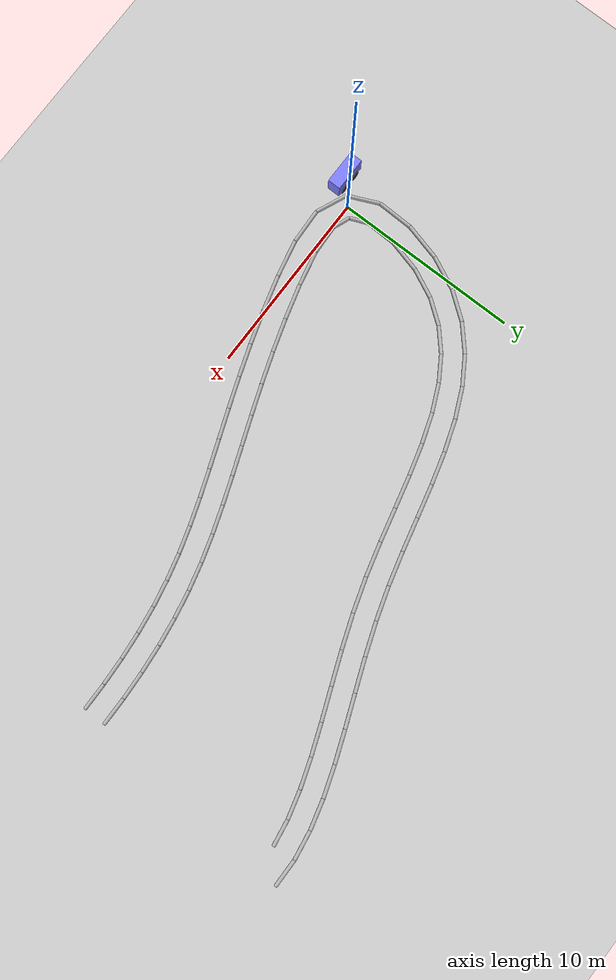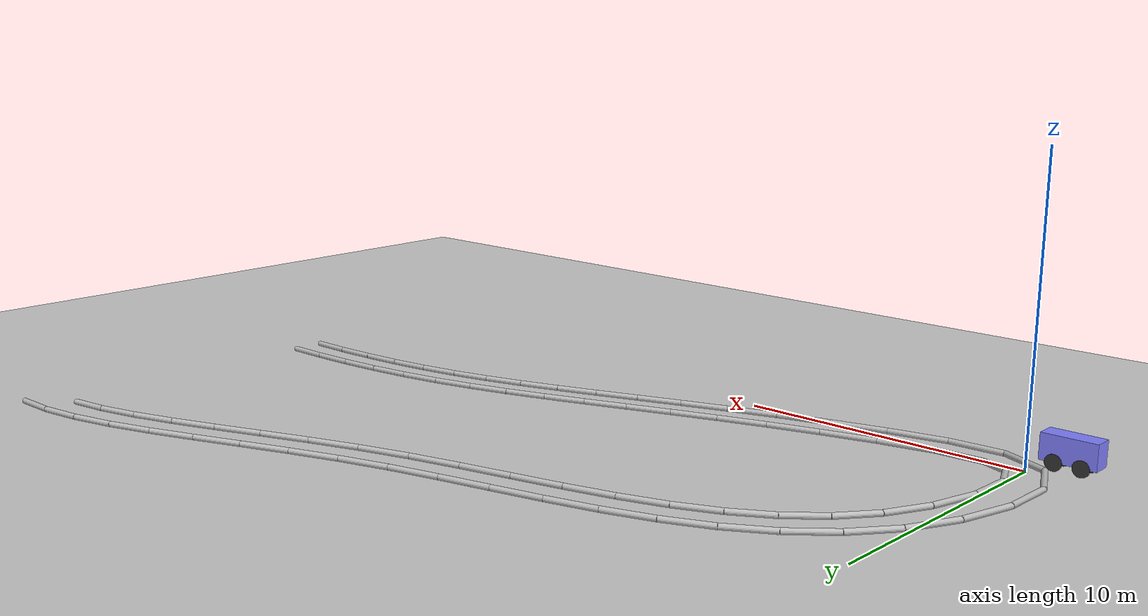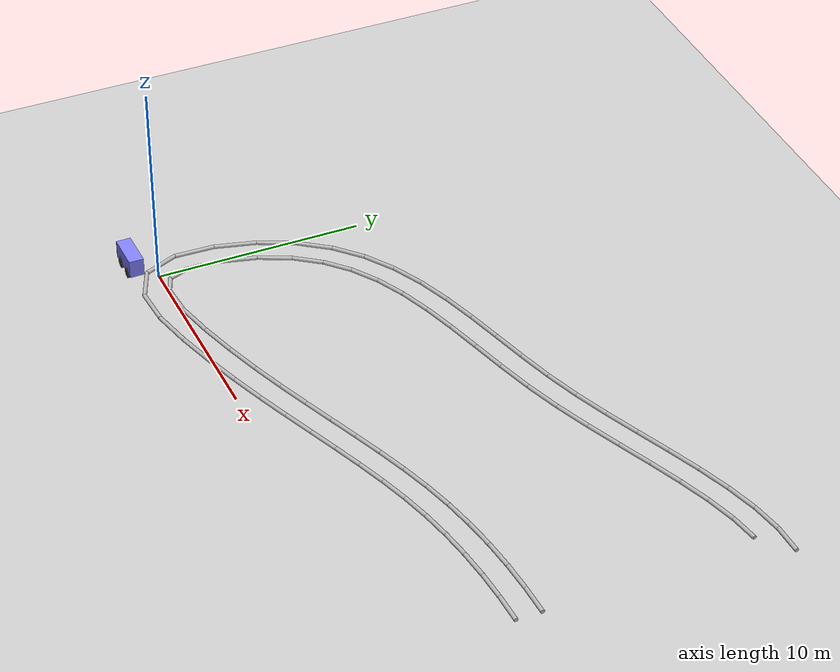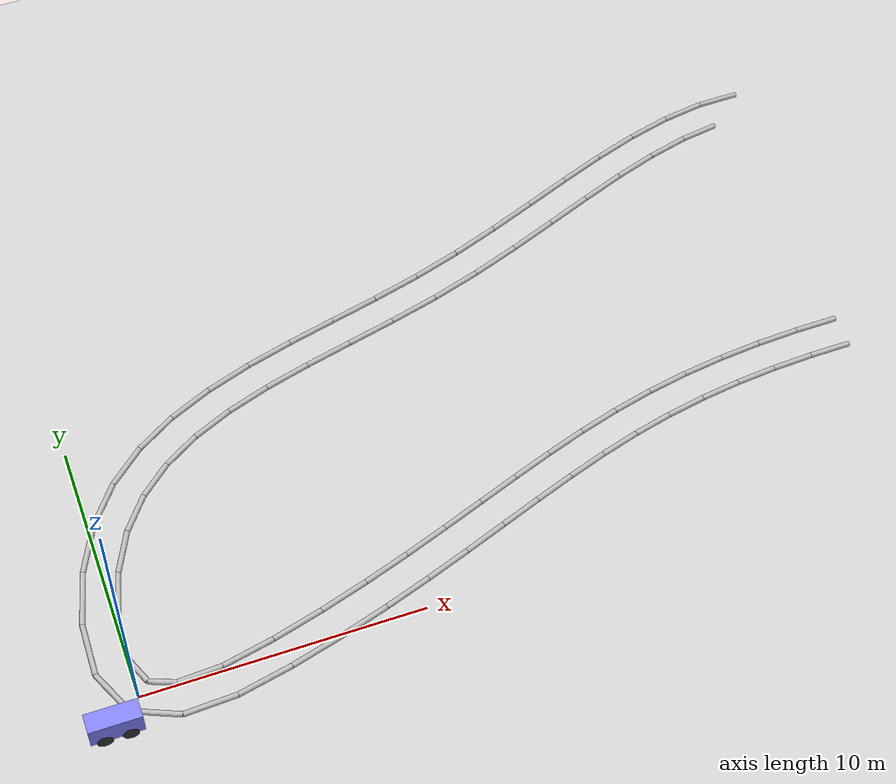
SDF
<sdf version="1.6">
 <world name="default">
  <include>
   <uri>file:///home/dliujm/um_files/rob_498_av/AutoVehicle25/audi_ws/src/vehicle_desc/models/lucy</uri>
   <pose>-1 -1 0.7205 0 0 0</pose>
  </include>
  <model name="ground_plane">
   <static>true</static>
   <link name="link">
    <collision name="collision">
     <geometry><plane><normal>0 0 1</normal><size>5000 5000</size></plane></geometry>
     <surface>
      <friction>
       <ode><mu>50</mu></ode>
       <bullet><friction>1</friction><rolling_friction>0.1</rolling_friction></bullet>
      </friction>
     </surface>
    </collision>
    <visual name="visual">
     <geometry><plane><normal>0 0 1</normal><size>5000 5000</size></plane></geometry>
     <material>
      <ambient>0.8 0.8 0.8 1</ambient>
      <diffuse>0.8 0.8 0.8 1</diffuse>
      <specular>0.8 0.8 0.8 1</specular>
     </material>
    </visual>
    <inertial>
     <mass>1</mass>
     <inertia><ixx>1</ixx><ixy>0</ixy><ixz>0</ixz><iyy>1</iyy><iyz>0</iyz><izz>1</izz></inertia>
    </inertial>
   </link>
  </model>
  <model name="line_model">
   <static>true</static>
   <link name="cylinder_(-0.42490210521195326, -0.4236250712439601)_(1.1908441192839923, -1.1194447244828043)">
    <pose>0.3829710070360195 -0.7715348978633823 0.05 0 1.5707963267948966 -0.40664573701741885</pose>
    <visual name="visual">
     <geometry><cylinder><radius>0.1</radius><length>1.759204607715182</length></cylinder></geometry>
    </visual>
    <collision name="collision">
     <geometry><cylinder><radius>0.1</radius><length>1.759204607715182</length></cylinder></geometry>
    </collision>
   </link>
   <link name="cylinder_(1.1908441192839923, -1.1194447244828043)_(3.091994487557768, -1.030270376383361)">
    <pose>2.1414193034208804 -1.0748575504330826 0.05 0 1.5707963267948966 0.04687111425009558</pose>
    <visual name="visual">
     <geometry><cylinder><radius>0.1</radius><length>1.9032406014864423</length></cylinder></geometry>
    </visual>
    <collision name="collision">
     <geometry><cylinder><radius>0.1</radius><length>1.9032406014864423</length></cylinder></geometry>
    </collision>
   </link>
   <link name="cylinder_(3.091994487557768, -1.030270376383361)_(5.074517604105659, -0.6003794913893742)">
    <pose>4.083256045831714 -0.8153249338863675 0.05 0 1.5707963267948966 0.21353447312620455</pose>
    <visual name="visual">
     <geometry><cylinder><radius>0.1</radius><length>2.0285965790781755</length></cylinder></geometry>
    </visual>
    <collision name="collision">
     <geometry><cylinder><radius>0.1</radius><length>2.0285965790781755</length></cylinder></geometry>
    </collision>
   </link>
   <link name="cylinder_(5.074517604105659, -0.6003794913893742)_(6.9579002851628955, -0.08009286775584715)">
    <pose>6.016208944634277 -0.34023617957261065 0.05 0 1.5707963267948966 0.26952901872523805</pose>
    <visual name="visual">
     <geometry><cylinder><radius>0.1</radius><length>1.9539264300475387</length></cylinder></geometry>
    </visual>
    <collision name="collision">
     <geometry><cylinder><radius>0.1</radius><length>1.9539264300475387</length></cylinder></geometry>
    </collision>
   </link>
   <link name="cylinder_(6.9579002851628955, -0.08009286775584715)_(8.729994601687931, 0.47400390705059803)">
    <pose>7.843947443425414 0.19695551964737545 0.05 0 1.5707963267948966 0.3030479841500894</pose>
    <visual name="visual">
     <geometry><cylinder><radius>0.1</radius><length>1.8567017807152655</length></cylinder></geometry>
    </visual>
    <collision name="collision">
     <geometry><cylinder><radius>0.1</radius><length>1.8567017807152655</length></cylinder></geometry>
    </collision>
   </link>
   <link name="cylinder_(8.729994601687931, 0.47400390705059803)_(10.405185362650311, 1.0484684190541398)">
    <pose>9.567589982169121 0.761236163052369 0.05 0 1.5707963267948966 0.3303579236713938</pose>
    <visual name="visual">
     <geometry><cylinder><radius>0.1</radius><length>1.770952726970764</length></cylinder></geometry>
    </visual>
    <collision name="collision">
     <geometry><cylinder><radius>0.1</radius><length>1.770952726970764</length></cylinder></geometry>
    </collision>
   </link>
   <link name="cylinder_(10.405185362650311, 1.0484684190541398)_(11.997865557862005, 1.629858035329601)">
    <pose>11.201525460256157 1.3391632271918703 0.05 0 1.5707963267948966 0.35000884361238016</pose>
    <visual name="visual">
     <geometry><cylinder><radius>0.1</radius><length>1.6954775404388247</length></cylinder></geometry>
    </visual>
    <collision name="collision">
     <geometry><cylinder><radius>0.1</radius><length>1.6954775404388247</length></cylinder></geometry>
    </collision>
   </link>
   <link name="cylinder_(11.997865557862005, 1.629858035329601)_(13.522477881215085, 2.2048133128910097)">
    <pose>12.760171719538544 1.9173356741103054 0.05 0 1.5707963267948966 0.3606242586592719</pose>
    <visual name="visual">
     <geometry><cylinder><radius>0.1</radius><length>1.6294220778287605</length></cylinder></geometry>
    </visual>
    <collision name="collision">
     <geometry><cylinder><radius>0.1</radius><length>1.6294220778287605</length></cylinder></geometry>
    </collision>
   </link>
   <link name="cylinder_(13.522477881215085, 2.2048133128910097)_(14.993519838179548, 2.7601410753054667)">
    <pose>14.257998859697317 2.482477194098238 0.05 0 1.5707963267948966 0.36096625466536547</pose>
    <visual name="visual">
     <geometry><cylinder><radius>0.1</radius><length>1.5723718907618782</length></cylinder></geometry>
    </visual>
    <collision name="collision">
     <geometry><cylinder><radius>0.1</radius><length>1.5723718907618782</length></cylinder></geometry>
    </collision>
   </link>
   <link name="cylinder_(14.993519838179548, 2.7601410753054667)_(16.425564987053395, 3.2828989287556483)">
    <pose>15.709542412616472 3.0215200020305577 0.05 0 1.5707963267948966 0.350012674009541</pose>
    <visual name="visual">
     <geometry><cylinder><radius>0.1</radius><length>1.5244766583181784</length></cylinder></geometry>
    </visual>
    <collision name="collision">
     <geometry><cylinder><radius>0.1</radius><length>1.5244766583181784</length></cylinder></geometry>
    </collision>
   </link>
   <link name="cylinder_(16.425564987053395, 3.2828989287556483)_(17.8333194081268, 3.760470914795119)">
    <pose>17.129442197590098 3.5216849217753836 0.05 0 1.5707963267948966 0.32706052616070114</pose>
    <visual name="visual">
     <geometry><cylinder><radius>0.1</radius><length>1.4865555865494586</length></cylinder></geometry>
    </visual>
    <collision name="collision">
     <geometry><cylinder><radius>0.1</radius><length>1.4865555865494586</length></cylinder></geometry>
    </collision>
   </link>
   <link name="cylinder_(17.8333194081268, 3.760470914795119)_(19.231726768766382, 4.1806136170179204)">
    <pose>18.53252308844659 3.97054226590652 0.05 0 1.5707963267948966 0.2918638225384362</pose>
    <visual name="visual">
     <geometry><cylinder><radius>0.1</radius><length>1.4601585655407556</length></cylinder></geometry>
    </visual>
    <collision name="collision">
     <geometry><cylinder><radius>0.1</radius><length>1.4601585655407556</length></cylinder></geometry>
    </collision>
   </link>
   <link name="cylinder_(19.231726768766382, 4.1806136170179204)_(20.636491258416903, 4.531671735044268)">
    <pose>19.934109013591645 4.356142676031094 0.05 0 1.5707963267948966 0.2448895496930728</pose>
    <visual name="visual">
     <geometry><cylinder><radius>0.1</radius><length>1.4479658399338329</length></cylinder></geometry>
    </visual>
    <collision name="collision">
     <geometry><cylinder><radius>0.1</radius><length>1.4479658399338329</length></cylinder></geometry>
    </collision>
   </link>
   <link name="cylinder_(20.636491258416903, 4.531671735044268)_(22.0627879557665, 4.809466026150759)">
    <pose>21.349639607091703 4.670568880597514 0.05 0 1.5707963267948966 0.19235796682162745</pose>
    <visual name="visual">
     <geometry><cylinder><radius>0.1</radius><length>1.4530973597944916</length></cylinder></geometry>
    </visual>
    <collision name="collision">
     <geometry><cylinder><radius>0.1</radius><length>1.4530973597944916</length></cylinder></geometry>
    </collision>
   </link>
   <link name="cylinder_(22.0627879557665, 4.809466026150759)_(23.512406203221687, 5.01764055869068)">
    <pose>22.78759707949409 4.913553292420719 0.05 0 1.5707963267948966 0.1426312999129373</pose>
    <visual name="visual">
     <geometry><cylinder><radius>0.1</radius><length>1.4644895695611029</length></cylinder></geometry>
    </visual>
    <collision name="collision">
     <geometry><cylinder><radius>0.1</radius><length>1.4644895695611029</length></cylinder></geometry>
    </collision>
   </link>
   <link name="cylinder_(23.512406203221687, 5.01764055869068)_(24.984612074882982, 5.160124359403968)">
    <pose>24.248509139052334 5.088882459047324 0.05 0 1.5707963267948966 0.09648202874275892</pose>
    <visual name="visual">
     <geometry><cylinder><radius>0.1</radius><length>1.479084771748968</length></cylinder></geometry>
    </visual>
    <collision name="collision">
     <geometry><cylinder><radius>0.1</radius><length>1.479084771748968</length></cylinder></geometry>
    </collision>
   </link>
   <link name="cylinder_(24.984612074882982, 5.160124359403968)_(26.478593727209763, 5.240849577262615)">
    <pose>25.731602901046372 5.2004869683332915 0.05 0 1.5707963267948966 0.053981113129797524</pose>
    <visual name="visual">
     <geometry><cylinder><radius>0.1</radius><length>1.4961610001224415</length></cylinder></geometry>
    </visual>
    <collision name="collision">
     <geometry><cylinder><radius>0.1</radius><length>1.4961610001224415</length></cylinder></geometry>
    </collision>
   </link>
   <link name="cylinder_(26.478593727209763, 5.240849577262615)_(27.9934754372947, 5.2637653848314105)">
    <pose>27.23603458225223 5.252307481047013 0.05 0 1.5707963267948966 0.015125973014970729</pose>
    <visual name="visual">
     <geometry><cylinder><radius>0.1</radius><length>1.5150550253328718</length></cylinder></geometry>
    </visual>
    <collision name="collision">
     <geometry><cylinder><radius>0.1</radius><length>1.5150550253328718</length></cylinder></geometry>
    </collision>
   </link>
   <link name="cylinder_(28.926657469427106, 17.758682647520832)_(27.399387412983863, 17.73144496794074)">
    <pose>28.163022441205484 17.745063807730787 0.05 0 1.5707963267948966 -3.123760317860567</pose>
    <visual name="visual">
     <geometry><cylinder><radius>0.1</radius><length>1.5275129186023446</length></cylinder></geometry>
    </visual>
    <collision name="collision">
     <geometry><cylinder><radius>0.1</radius><length>1.5275129186023446</length></cylinder></geometry>
    </collision>
   </link>
   <link name="cylinder_(27.399387412983863, 17.73144496794074)_(25.843923676405467, 17.484533581234448)">
    <pose>26.621655544694665 17.607989274587595 0.05 0 1.5707963267948966 -2.9841680168689373</pose>
    <visual name="visual">
     <geometry><cylinder><radius>0.1</radius><length>1.5749389412595174</length></cylinder></geometry>
    </visual>
    <collision name="collision">
     <geometry><cylinder><radius>0.1</radius><length>1.5749389412595174</length></cylinder></geometry>
    </collision>
   </link>
   <link name="cylinder_(25.843923676405467, 17.484533581234448)_(24.260597231850582, 17.066920289893694)">
    <pose>25.052260454128024 17.275726935564073 0.05 0 1.5707963267948966 -2.8837088018435764</pose>
    <visual name="visual">
     <geometry><cylinder><radius>0.1</radius><length>1.6374747299214332</length></cylinder></geometry>
    </visual>
    <collision name="collision">
     <geometry><cylinder><radius>0.1</radius><length>1.6374747299214332</length></cylinder></geometry>
    </collision>
   </link>
   <link name="cylinder_(24.260597231850582, 17.066920289893694)_(22.648145672866093, 16.523665710398625)">
    <pose>23.454371452358338 16.79529300014616 0.05 0 1.5707963267948966 -2.8166245974317032</pose>
    <visual name="visual">
     <geometry><cylinder><radius>0.1</radius><length>1.701506852238296</length></cylinder></geometry>
    </visual>
    <collision name="collision">
     <geometry><cylinder><radius>0.1</radius><length>1.701506852238296</length></cylinder></geometry>
    </collision>
   </link>
   <link name="cylinder_(22.648145672866093, 16.523665710398625)_(21.006080437179737, 15.897374020826911)">
    <pose>21.827113055022913 16.210519865612767 0.05 0 1.5707963267948966 -2.7772186063863455</pose>
    <visual name="visual">
     <geometry><cylinder><radius>0.1</radius><length>1.7574468750651555</length></cylinder></geometry>
    </visual>
    <collision name="collision">
     <geometry><cylinder><radius>0.1</radius><length>1.7574468750651555</length></cylinder></geometry>
    </collision>
   </link>
   <link name="cylinder_(21.006080437179737, 15.897374020826911)_(19.335214613374717, 15.229411308264101)">
    <pose>20.170647525277225 15.563392664545507 0.05 0 1.5707963267948966 -2.761284216042607</pose>
    <visual name="visual">
     <geometry><cylinder><radius>0.1</radius><length>1.7994351298487796</length></cylinder></geometry>
    </visual>
    <collision name="collision">
     <geometry><cylinder><radius>0.1</radius><length>1.7994351298487796</length></cylinder></geometry>
    </collision>
   </link>
   <link name="cylinder_(19.335214613374717, 15.229411308264101)_(17.637562093755548, 14.560528073034021)">
    <pose>18.486388353565133 14.894969690649061 0.05 0 1.5707963267948966 -2.7662652157785117</pose>
    <visual name="visual">
     <geometry><cylinder><radius>0.1</radius><length>1.8246722609118522</length></cylinder></geometry>
    </visual>
    <collision name="collision">
     <geometry><cylinder><radius>0.1</radius><length>1.8246722609118522</length></cylinder></geometry>
    </collision>
   </link>
   <link name="cylinder_(17.637562093755548, 14.560528073034021)_(15.916114950295386, 13.931058172924518)">
    <pose>16.776838522025468 14.245793122979268 0.05 0 1.5707963267948966 -2.7910326760395954</pose>
    <visual name="visual">
     <geometry><cylinder><radius>0.1</radius><length>1.832924609161823</length></cylinder></geometry>
    </visual>
    <collision name="collision">
     <geometry><cylinder><radius>0.1</radius><length>1.832924609161823</length></cylinder></geometry>
    </collision>
   </link>
   <link name="cylinder_(15.916114950295386, 13.931058172924518)_(14.172954186334366, 13.379615076176815)">
    <pose>15.044534568314877 13.655336624550667 0.05 0 1.5707963267948966 -2.835207196821547</pose>
    <visual name="visual">
     <geometry><cylinder><radius>0.1</radius><length>1.828304935716103</length></cylinder></geometry>
    </visual>
    <collision name="collision">
     <geometry><cylinder><radius>0.1</radius><length>1.828304935716103</length></cylinder></geometry>
    </collision>
   </link>
   <link name="cylinder_(14.172954186334366, 13.379615076176815)_(12.401689527017005, 12.907430260413813)">
    <pose>13.287321856675685 13.143522668295315 0.05 0 1.5707963267948966 -2.881070605653938</pose>
    <visual name="visual">
     <geometry><cylinder><radius>0.1</radius><length>1.8331221982136883</length></cylinder></geometry>
    </visual>
    <collision name="collision">
     <geometry><cylinder><radius>0.1</radius><length>1.8331221982136883</length></cylinder></geometry>
    </collision>
   </link>
   <link name="cylinder_(12.401689527017005, 12.907430260413813)_(10.622754018063997, 12.475354704338923)">
    <pose>11.512221772540501 12.691392482376369 0.05 0 1.5707963267948966 -2.903322224270746</pose>
    <visual name="visual">
     <geometry><cylinder><radius>0.1</radius><length>1.8306558472775063</length></cylinder></geometry>
    </visual>
    <collision name="collision">
     <geometry><cylinder><radius>0.1</radius><length>1.8306558472775063</length></cylinder></geometry>
    </collision>
   </link>
   <link name="cylinder_(10.622754018063997, 12.475354704338923)_(8.862495617888491, 12.041316262784775)">
    <pose>9.742624817976244 12.258335483561849 0.05 0 1.5707963267948966 -2.8998386484023535</pose>
    <visual name="visual">
     <geometry><cylinder><radius>0.1</radius><length>1.8129806960183505</length></cylinder></geometry>
    </visual>
    <collision name="collision">
     <geometry><cylinder><radius>0.1</radius><length>1.8129806960183505</length></cylinder></geometry>
    </collision>
   </link>
   <link name="cylinder_(8.862495617888491, 12.041316262784775)_(7.146747071125413, 11.561774908332783)">
    <pose>8.004621344506951 11.80154558555878 0.05 0 1.5707963267948966 -2.8690532635476913</pose>
    <visual name="visual">
     <geometry><cylinder><radius>0.1</radius><length>1.7815030132866092</length></cylinder></geometry>
    </visual>
    <collision name="collision">
     <geometry><cylinder><radius>0.1</radius><length>1.7815030132866092</length></cylinder></geometry>
    </collision>
   </link>
   <link name="cylinder_(7.146747071125413, 11.561774908332783)_(5.501119466249614, 10.991330068846406)">
    <pose>6.323933268687513 11.276552488589594 0.05 0 1.5707963267948966 -2.807911849114298</pose>
    <visual name="visual">
     <geometry><cylinder><radius>0.1</radius><length>1.7416938677120892</length></cylinder></geometry>
    </visual>
    <collision name="collision">
     <geometry><cylinder><radius>0.1</radius><length>1.7416938677120892</length></cylinder></geometry>
    </collision>
   </link>
   <link name="cylinder_(5.501119466249614, 10.991330068846406)_(3.9522119184521194, 10.282320568621447)">
    <pose>4.726665692350867 10.636825318733926 0.05 0 1.5707963267948966 -2.7123141108236135</pose>
    <visual name="visual">
     <geometry><cylinder><radius>0.1</radius><length>1.7034697129779834</length></cylinder></geometry>
    </visual>
    <collision name="collision">
     <geometry><cylinder><radius>0.1</radius><length>1.7034697129779834</length></cylinder></geometry>
    </collision>
   </link>
   <link name="cylinder_(3.9522119184521194, 10.282320568621447)_(2.5301883712882485, 9.385422155351074)">
    <pose>3.241200144870184 9.833871361986262 0.05 0 1.5707963267948966 -2.5788907900917235</pose>
    <visual name="visual">
     <geometry><cylinder><radius>0.1</radius><length>1.6812429129710644</length></cylinder></geometry>
    </visual>
    <collision name="collision">
     <geometry><cylinder><radius>0.1</radius><length>1.6812429129710644</length></cylinder></geometry>
    </collision>
   </link>
   <link name="cylinder_(2.5301883712882485, 9.385422155351074)_(1.27171833578875, 8.253159684455184)">
    <pose>1.9009533535384993 8.819290919903128 0.05 0 1.5707963267948966 -2.408935865770229</pose>
    <visual name="visual">
     <geometry><cylinder><radius>0.1</radius><length>1.6928570917975845</length></cylinder></geometry>
    </visual>
    <collision name="collision">
     <geometry><cylinder><radius>0.1</radius><length>1.6928570917975845</length></cylinder></geometry>
    </collision>
   </link>
   <link name="cylinder_(1.27171833578875, 8.253159684455184)_(0.21883716841742337, 6.84616947600165)">
    <pose>0.7452777521030867 7.549664580228417 0.05 0 1.5707963267948966 -2.213222395461731</pose>
    <visual name="visual">
     <geometry><cylinder><radius>0.1</radius><length>1.7573218826638808</length></cylinder></geometry>
    </visual>
    <collision name="collision">
     <geometry><cylinder><radius>0.1</radius><length>1.7573218826638808</length></cylinder></geometry>
    </collision>
   </link>
   <link name="cylinder_(0.21883716841742337, 6.84616947600165)_(-0.589348071903343, 5.1352411975114425)">
    <pose>-0.18525545174295982 5.990705336756546 0.05 0 1.5707963267948966 -2.012093789611296</pose>
    <visual name="visual">
     <geometry><cylinder><radius>0.1</radius><length>1.8922047872283276</length></cylinder></geometry>
    </visual>
    <collision name="collision">
     <geometry><cylinder><radius>0.1</radius><length>1.8922047872283276</length></cylinder></geometry>
    </collision>
   </link>
   <link name="cylinder_(-0.589348071903343, 5.1352411975114425)_(-1.09827945101534, 3.1649296767139585)">
    <pose>-0.8438137614593415 4.1500854371127005 0.05 0 1.5707963267948966 -1.8235713292230584</pose>
    <visual name="visual">
     <geometry><cylinder><radius>0.1</radius><length>2.034978780634366</length></cylinder></geometry>
    </visual>
    <collision name="collision">
     <geometry><cylinder><radius>0.1</radius><length>2.034978780634366</length></cylinder></geometry>
    </collision>
   </link>
   <link name="cylinder_(-1.09827945101534, 3.1649296767139585)_(-1.149749599258033, 1.2118138430213745)">
    <pose>-1.1240145251366864 2.1883717598676666 0.05 0 1.5707963267948966 -1.5971430684759051</pose>
    <visual name="visual">
     <geometry><cylinder><radius>0.1</radius><length>1.9537939082668885</length></cylinder></geometry>
    </visual>
    <collision name="collision">
     <geometry><cylinder><radius>0.1</radius><length>1.9537939082668885</length></cylinder></geometry>
    </collision>
   </link>
   <link name="cylinder_(-1.149749599258033, 1.2118138430213745)_(-0.42490210521195326, -0.4236250712439601)">
    <pose>-0.7873258522349932 0.3940943858887072 0.05 0 1.5707963267948966 -1.153600936607153</pose>
    <visual name="visual">
     <geometry><cylinder><radius>0.1</radius><length>1.7888723632272534</length></cylinder></geometry>
    </visual>
    <collision name="collision">
     <geometry><cylinder><radius>0.1</radius><length>1.7888723632272534</length></cylinder></geometry>
    </collision>
   </link>
   <link name="cylinder_(0.42490210521195326, 0.4236250712439601)_(1.323963134575797, 0.07314880550456752)">
    <pose>0.8744326198938751 0.24838693837426382 0.05 0 1.5707963267948966 -0.3717039751740809</pose>
    <visual name="visual">
     <geometry><cylinder><radius>0.1</radius><length>0.9649582101663281</length></cylinder></geometry>
    </visual>
    <collision name="collision">
     <geometry><cylinder><radius>0.1</radius><length>0.9649582101663281</length></cylinder></geometry>
    </collision>
   </link>
   <link name="cylinder_(1.323963134575797, 0.07314880550456752)_(2.9045149621762123, 0.1549939095726053)">
    <pose>2.1142390483760045 0.11407135753858641 0.05 0 1.5707963267948966 0.05173640363525212</pose>
    <visual name="visual">
     <geometry><cylinder><radius>0.1</radius><length>1.5826694856447197</length></cylinder></geometry>
    </visual>
    <collision name="collision">
     <geometry><cylinder><radius>0.1</radius><length>1.5826694856447197</length></cylinder></geometry>
    </collision>
   </link>
   <link name="cylinder_(2.9045149621762123, 0.1549939095726053)_(4.776264036711527, 0.5619650399509141)">
    <pose>3.84038949944387 0.3584794747617597 0.05 0 1.5707963267948966 0.21409596410163634</pose>
    <visual name="visual">
     <geometry><cylinder><radius>0.1</radius><length>1.9154816885016697</length></cylinder></geometry>
    </visual>
    <collision name="collision">
     <geometry><cylinder><radius>0.1</radius><length>1.9154816885016697</length></cylinder></geometry>
    </collision>
   </link>
   <link name="cylinder_(4.776264036711527, 0.5619650399509141)_(6.617812957534196, 1.0707071190300272)">
    <pose>5.697038497122861 0.8163360794904706 0.05 0 1.5707963267948966 0.2695351131239756</pose>
    <visual name="visual">
     <geometry><cylinder><radius>0.1</radius><length>1.9105289662313087</length></cylinder></geometry>
    </visual>
    <collision name="collision">
     <geometry><cylinder><radius>0.1</radius><length>1.9105289662313087</length></cylinder></geometry>
    </collision>
   </link>
   <link name="cylinder_(6.617812957534196, 1.0707071190300272)_(8.354830201275002, 1.6138511216643843)">
    <pose>7.486321579404599 1.3422791203472058 0.05 0 1.5707963267948966 0.30305589971408925</pose>
    <visual name="visual">
     <geometry><cylinder><radius>0.1</radius><length>1.8199544809281845</length></cylinder></geometry>
    </visual>
    <collision name="collision">
     <geometry><cylinder><radius>0.1</radius><length>1.8199544809281845</length></cylinder></geometry>
    </collision>
   </link>
   <link name="cylinder_(8.354830201275002, 1.6138511216643843)_(10.003135137203753, 2.179112313575475)">
    <pose>9.178982669239378 1.8964817176199296 0.05 0 1.5707963267948966 0.3303668789653379</pose>
    <visual name="visual">
     <geometry><cylinder><radius>0.1</radius><length>1.7425353301691848</length></cylinder></geometry>
    </visual>
    <collision name="collision">
     <geometry><cylinder><radius>0.1</radius><length>1.7425353301691848</length></cylinder></geometry>
    </collision>
   </link>
   <link name="cylinder_(10.003135137203753, 2.179112313575475)_(11.578545071072645, 2.7542113291650994)">
    <pose>10.790840104138198 2.466661821370287 0.05 0 1.5707963267948966 0.3500165227522476</pose>
    <visual name="visual">
     <geometry><cylinder><radius>0.1</radius><length>1.6770972951695267</length></cylinder></geometry>
    </visual>
    <collision name="collision">
     <geometry><cylinder><radius>0.1</radius><length>1.6770972951695267</length></cylinder></geometry>
    </collision>
   </link>
   <link name="cylinder_(11.578545071072645, 2.7542113291650994)_(13.09682760455378, 3.3267856128958515)">
    <pose>12.337686337813214 3.0404984710304754 0.05 0 1.5707963267948966 0.36062775849574974</pose>
    <visual name="visual">
     <geometry><cylinder><radius>0.1</radius><length>1.6226592870543342</length></cylinder></geometry>
    </visual>
    <collision name="collision">
     <geometry><cylinder><radius>0.1</radius><length>1.6226592870543342</length></cylinder></geometry>
    </collision>
   </link>
   <link name="cylinder_(13.09682760455378, 3.3267856128958515)_(14.57369552774133, 3.8843063426772497)">
    <pose>13.835261566147555 3.6055459777865506 0.05 0 1.5707963267948966 0.36096247817645477</pose>
    <visual name="visual">
     <geometry><cylinder><radius>0.1</radius><length>1.5785969170995773</length></cylinder></geometry>
    </visual>
    <collision name="collision">
     <geometry><cylinder><radius>0.1</radius><length>1.5785969170995773</length></cylinder></geometry>
    </collision>
   </link>
   <link name="cylinder_(14.57369552774133, 3.8843063426772497)_(16.024785577901447, 4.413993913803242)">
    <pose>15.299240552821388 4.149150128240246 0.05 0 1.5707963267948966 0.34999899920565486</pose>
    <visual name="visual">
     <geometry><cylinder><radius>0.1</radius><length>1.5447431037810277</length></cylinder></geometry>
    </visual>
    <collision name="collision">
     <geometry><cylinder><radius>0.1</radius><length>1.5447431037810277</length></cylinder></geometry>
    </collision>
   </link>
   <link name="cylinder_(16.024785577901447, 4.413993913803242)_(17.46560197030812, 4.902742286196882)">
    <pose>16.745193774104784 4.658368100000062 0.05 0 1.5707963267948966 0.32703582645944945</pose>
    <visual name="visual">
     <geometry><cylinder><radius>0.1</radius><length>1.5214555031762236</length></cylinder></geometry>
    </visual>
    <collision name="collision">
     <geometry><cylinder><radius>0.1</radius><length>1.5214555031762236</length></cylinder></geometry>
    </collision>
   </link>
   <link name="cylinder_(17.46560197030812, 4.902742286196882)_(18.91141133315891, 5.337072877740751)">
    <pose>18.188506651733515 5.119907581968817 0.05 0 1.5707963267948966 0.29182972733518553</pose>
    <visual name="visual">
     <geometry><cylinder><radius>0.1</radius><length>1.5096382932536685</length></cylinder></geometry>
    </visual>
    <collision name="collision">
     <geometry><cylinder><radius>0.1</radius><length>1.5096382932536685</length></cylinder></geometry>
    </collision>
   </link>
   <link name="cylinder_(18.91141133315891, 5.337072877740751)_(20.376488228716482, 5.7031658342810525)">
    <pose>19.643949780937696 5.520119356010902 0.05 0 1.5707963267948966 0.24486542444442416</pose>
    <visual name="visual">
     <geometry><cylinder><radius>0.1</radius><length>1.5101239560794453</length></cylinder></geometry>
    </visual>
    <collision name="collision">
     <geometry><cylinder><radius>0.1</radius><length>1.5101239560794453</length></cylinder></geometry>
    </collision>
   </link>
   <link name="cylinder_(20.376488228716482, 5.7031658342810525)_(21.863387737810434, 5.992783208092724)">
    <pose>21.11993798326346 5.847974521186888 0.05 0 1.5707963267948966 0.19237073645167074</pose>
    <visual name="visual">
     <geometry><cylinder><radius>0.1</radius><length>1.5148426893104792</length></cylinder></geometry>
    </visual>
    <collision name="collision">
     <geometry><cylinder><radius>0.1</radius><length>1.5148426893104792</length></cylinder></geometry>
    </collision>
   </link>
   <link name="cylinder_(21.863387737810434, 5.992783208092724)_(23.369954782588856, 6.209155389802609)">
    <pose>22.616671260199645 6.100969298947666 0.05 0 1.5707963267948966 0.1426439390716117</pose>
    <visual name="visual">
     <geometry><cylinder><radius>0.1</radius><length>1.5220253550549943</length></cylinder></geometry>
    </visual>
    <collision name="collision">
     <geometry><cylinder><radius>0.1</radius><length>1.5220253550549943</length></cylinder></geometry>
    </collision>
   </link>
   <link name="cylinder_(23.369954782588856, 6.209155389802609)_(24.895100421497254, 6.356781229149073)">
    <pose>24.132527602043055 6.282968309475841 0.05 0 1.5707963267948966 0.09649397750204541</pose>
    <visual name="visual">
     <geometry><cylinder><radius>0.1</radius><length>1.5322736727895754</length></cylinder></geometry>
    </visual>
    <collision name="collision">
     <geometry><cylinder><radius>0.1</radius><length>1.5322736727895754</length></cylinder></geometry>
    </collision>
   </link>
   <link name="cylinder_(24.895100421497254, 6.356781229149073)_(26.43781363062226, 6.44015645363843)">
    <pose>25.666457026059756 6.398468841393751 0.05 0 1.5707963267948966 0.0539920132268898</pose>
    <visual name="visual">
     <geometry><cylinder><radius>0.1</radius><length>1.5449645541783217</length></cylinder></geometry>
    </visual>
    <collision name="collision">
     <geometry><cylinder><radius>0.1</radius><length>1.5449645541783217</length></cylinder></geometry>
    </collision>
   </link>
   <link name="cylinder_(26.43781363062226, 6.44015645363843)_(27.99714726541719, 6.463759767184193)">
    <pose>27.217480448019725 6.4519581104113115 0.05 0 1.5707963267948966 0.015135639085187606</pose>
    <visual name="visual">
     <geometry><cylinder><radius>0.1</radius><length>1.5595122638226073</length></cylinder></geometry>
    </visual>
    <collision name="collision">
     <geometry><cylinder><radius>0.1</radius><length>1.5595122638226073</length></cylinder></geometry>
    </collision>
   </link>
   <link name="cylinder_(27.512214017527736, 16.536760843451297)_(26.09807467888699, 16.311755994503855)">
    <pose>26.805144348207364 16.424258418977576 0.05 0 1.5707963267948966 -2.983804511006092</pose>
    <visual name="visual">
     <geometry><cylinder><radius>0.1</radius><length>1.4319278093329786</length></cylinder></geometry>
    </visual>
    <collision name="collision">
     <geometry><cylinder><radius>0.1</radius><length>1.4319278093329786</length></cylinder></geometry>
    </collision>
   </link>
   <link name="cylinder_(26.09807467888699, 16.311755994503855)_(24.610931026279214, 15.9191980968168)">
    <pose>25.354502852583103 16.115477045660327 0.05 0 1.5707963267948966 -2.8835117278259865</pose>
    <visual name="visual">
     <geometry><cylinder><radius>0.1</radius><length>1.5380825551731878</length></cylinder></geometry>
    </visual>
    <collision name="collision">
     <geometry><cylinder><radius>0.1</radius><length>1.5380825551731878</length></cylinder></geometry>
    </collision>
   </link>
   <link name="cylinder_(24.610931026279214, 15.9191980968168)_(23.058238059800665, 15.39591386084204)">
    <pose>23.834584543039938 15.65755597882942 0.05 0 1.5707963267948966 -2.8165302914196344</pose>
    <visual name="visual">
     <geometry><cylinder><radius>0.1</radius><length>1.6384998748158772</length></cylinder></geometry>
    </visual>
    <collision name="collision">
     <geometry><cylinder><radius>0.1</radius><length>1.6384998748158772</length></cylinder></geometry>
    </collision>
   </link>
   <link name="cylinder_(23.058238059800665, 15.39591386084204)_(21.44667693536702, 14.781186435434071)">
    <pose>22.25245749758384 15.088550148138054 0.05 0 1.5707963267948966 -2.7771806043070177</pose>
    <visual name="visual">
     <geometry><cylinder><radius>0.1</radius><length>1.724824357821557</length></cylinder></geometry>
    </visual>
    <collision name="collision">
     <geometry><cylinder><radius>0.1</radius><length>1.724824357821557</length></cylinder></geometry>
    </collision>
   </link>
   <link name="cylinder_(21.44667693536702, 14.781186435434071)_(19.781627158038212, 14.115537060439394)">
    <pose>20.614152046702614 14.448361747936733 0.05 0 1.5707963267948966 -2.761278133829684</pose>
    <visual name="visual">
     <geometry><cylinder><radius>0.1</radius><length>1.793175912010173</length></cylinder></geometry>
    </visual>
    <collision name="collision">
     <geometry><cylinder><radius>0.1</radius><length>1.793175912010173</length></cylinder></geometry>
    </collision>
   </link>
   <link name="cylinder_(19.781627158038212, 14.115537060439394)_(18.067267429152984, 13.440102562466285)">
    <pose>18.9244472935956 13.77781981145284 0.05 0 1.5707963267948966 -2.7662810996930074</pose>
    <visual name="visual">
     <geometry><cylinder><radius>0.1</radius><length>1.8426179856594305</length></cylinder></geometry>
    </visual>
    <collision name="collision">
     <geometry><cylinder><radius>0.1</radius><length>1.8426179856594305</length></cylinder></geometry>
    </collision>
   </link>
   <link name="cylinder_(18.067267429152984, 13.440102562466285)_(16.306798270381417, 12.796436410658979)">
    <pose>17.1870328497672 13.118269486562632 0.05 0 1.5707963267948966 -2.791069083847912</pose>
    <visual name="visual">
     <geometry><cylinder><radius>0.1</radius><length>1.8744486586642737</length></cylinder></geometry>
    </visual>
    <collision name="collision">
     <geometry><cylinder><radius>0.1</radius><length>1.8744486586642737</length></cylinder></geometry>
    </collision>
   </link>
   <link name="cylinder_(16.306798270381417, 12.796436410658979)_(14.504737581064884, 12.226393597456838)">
    <pose>15.40576792572315 12.511415004057909 0.05 0 1.5707963267948966 -2.8352238830209027</pose>
    <visual name="visual">
     <geometry><cylinder><radius>0.1</radius><length>1.8900718337839415</length></cylinder></geometry>
    </visual>
    <collision name="collision">
     <geometry><cylinder><radius>0.1</radius><length>1.8900718337839415</length></cylinder></geometry>
    </collision>
   </link>
   <link name="cylinder_(14.504737581064884, 12.226393597456838)_(12.692945364450043, 11.743312552808101)">
    <pose>13.598841472757464 11.98485307513247 0.05 0 1.5707963267948966 -2.881023007382857</pose>
    <visual name="visual">
     <geometry><cylinder><radius>0.1</radius><length>1.8750888863957973</length></cylinder></geometry>
    </visual>
    <collision name="collision">
     <geometry><cylinder><radius>0.1</radius><length>1.8750888863957973</length></cylinder></geometry>
    </collision>
   </link>
   <link name="cylinder_(12.692945364450043, 11.743312552808101)_(10.902916597552426, 11.308517556723888)">
    <pose>11.797930981001235 11.525915054765996 0.05 0 1.5707963267948966 -2.90330900362268</pose>
    <visual name="visual">
     <geometry><cylinder><radius>0.1</radius><length>1.8420775431400473</length></cylinder></geometry>
    </visual>
    <collision name="collision">
     <geometry><cylinder><radius>0.1</radius><length>1.8420775431400473</length></cylinder></geometry>
    </collision>
   </link>
   <link name="cylinder_(10.902916597552426, 11.308517556723888)_(9.162209687398049, 10.879347469512762)">
    <pose>10.032563142475237 11.093932513118325 0.05 0 1.5707963267948966 -2.89986432651327</pose>
    <visual name="visual">
     <geometry><cylinder><radius>0.1</radius><length>1.7928322595312725</length></cylinder></geometry>
    </visual>
    <collision name="collision">
     <geometry><cylinder><radius>0.1</radius><length>1.7928322595312725</length></cylinder></geometry>
    </collision>
   </link>
   <link name="cylinder_(9.162209687398049, 10.879347469512762)_(7.498898254791146, 10.414609033734507)">
    <pose>8.330553971094597 10.646978251623635 0.05 0 1.5707963267948966 -2.869135274353807</pose>
    <visual name="visual">
     <geometry><cylinder><radius>0.1</radius><length>1.7270167154751124</length></cylinder></geometry>
    </visual>
    <collision name="collision">
     <geometry><cylinder><radius>0.1</radius><length>1.7270167154751124</length></cylinder></geometry>
    </collision>
   </link>
   <link name="cylinder_(7.498898254791146, 10.414609033734507)_(5.941277576696052, 9.87496953666685)">
    <pose>6.7200879157435995 10.144789285200678 0.05 0 1.5707963267948966 -2.8080828723987663</pose>
    <visual name="visual">
     <geometry><cylinder><radius>0.1</radius><length>1.6484516867730319</length></cylinder></geometry>
    </visual>
    <collision name="collision">
     <geometry><cylinder><radius>0.1</radius><length>1.6484516867730319</length></cylinder></geometry>
    </collision>
   </link>
   <link name="cylinder_(5.941277576696052, 9.87496953666685)_(4.51665490336091, 9.223356869155191)">
    <pose>5.22896624002848 9.549163202911021 0.05 0 1.5707963267948966 -2.7126076086120716</pose>
    <visual name="visual">
     <geometry><cylinder><radius>0.1</radius><length>1.5665723187399385</length></cylinder></geometry>
    </visual>
    <collision name="collision">
     <geometry><cylinder><radius>0.1</radius><length>1.5665723187399385</length></cylinder></geometry>
    </collision>
   </link>
   <link name="cylinder_(4.51665490336091, 9.223356869155191)_(3.248772656669497, 8.42436199864749)">
    <pose>3.8827137800152034 8.82385943390134 0.05 0 1.5707963267948966 -2.5792765912885223</pose>
    <visual name="visual">
     <geometry><cylinder><radius>0.1</radius><length>1.4986387805514987</length></cylinder></geometry>
    </visual>
    <collision name="collision">
     <geometry><cylinder><radius>0.1</radius><length>1.4986387805514987</length></cylinder></geometry>
    </collision>
   </link>
   <link name="cylinder_(3.248772656669497, 8.42436199864749)_(2.1548676910303888, 7.440726784865146)">
    <pose>2.701820173849943 7.932544391756318 0.05 0 1.5707963267948966 -2.4092218048372125</pose>
    <visual name="visual">
     <geometry><cylinder><radius>0.1</radius><length>1.4711105694822995</length></cylinder></geometry>
    </visual>
    <collision name="collision">
     <geometry><cylinder><radius>0.1</radius><length>1.4711105694822995</length></cylinder></geometry>
    </collision>
   </link>
   <link name="cylinder_(2.1548676910303888, 7.440726784865146)_(1.2468110154188858, 6.227081622881421)">
    <pose>1.7008393532246373 6.833904203873283 0.05 0 1.5707963267948966 -2.213148330670268</pose>
    <visual name="visual">
     <geometry><cylinder><radius>0.1</radius><length>1.5157511356845872</length></cylinder></geometry>
    </visual>
    <collision name="collision">
     <geometry><cylinder><radius>0.1</radius><length>1.5157511356845872</length></cylinder></geometry>
    </collision>
   </link>
   <link name="cylinder_(1.2468110154188858, 6.227081622881421)_(0.539404838066412, 4.7279122539844565)">
    <pose>0.8931079267426489 5.477496938432939 0.05 0 1.5707963267948966 -2.0116840185356684</pose>
    <visual name="visual">
     <geometry><cylinder><radius>0.1</radius><length>1.6576888418504128</length></cylinder></geometry>
    </visual>
    <collision name="collision">
     <geometry><cylinder><radius>0.1</radius><length>1.6576888418504128</length></cylinder></geometry>
    </collision>
   </link>
   <link name="cylinder_(0.539404838066412, 4.7279122539844565)_(0.08734864029448985, 2.979764806673743)">
    <pose>0.31337673918045095 3.8538385303291 0.05 0 1.5707963267948966 -1.823844687231335</pose>
    <visual name="visual">
     <geometry><cylinder><radius>0.1</radius><length>1.8056506593145225</length></cylinder></geometry>
    </visual>
    <collision name="collision">
     <geometry><cylinder><radius>0.1</radius><length>1.8056506593145225</length></cylinder></geometry>
    </collision>
   </link>
   <link name="cylinder_(0.08734864029448985, 2.979764806673743)_(0.03874961968478256, 1.3775534175722848)">
    <pose>0.06304912998963622 2.178659112123014 0.05 0 1.5707963267948966 -1.6011194942100004</pose>
    <visual name="visual">
     <geometry><cylinder><radius>0.1</radius><length>1.6029482836856117</length></cylinder></geometry>
    </visual>
    <collision name="collision">
     <geometry><cylinder><radius>0.1</radius><length>1.6029482836856117</length></cylinder></geometry>
    </collision>
   </link>
   <link name="cylinder_(0.03874961968478256, 1.3775534175722848)_(0.42490210521195326, 0.4236250712439601)">
    <pose>0.23182586244836792 0.9005892444081225 0.05 0 1.5707963267948966 -1.1861568163673704</pose>
    <visual name="visual">
     <geometry><cylinder><radius>0.1</radius><length>1.029122457245737</length></cylinder></geometry>
    </visual>
    <collision name="collision">
     <geometry><cylinder><radius>0.1</radius><length>1.029122457245737</length></cylinder></geometry>
    </collision>
   </link>
  </model>
 </world>
</sdf>
